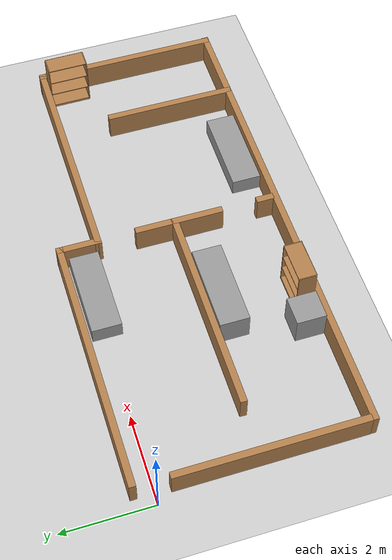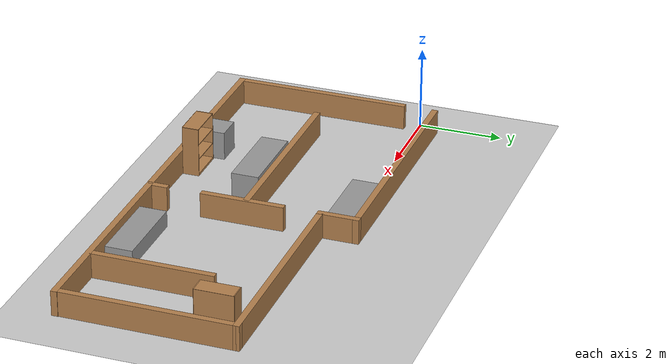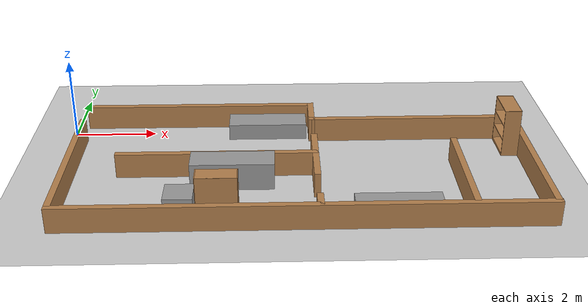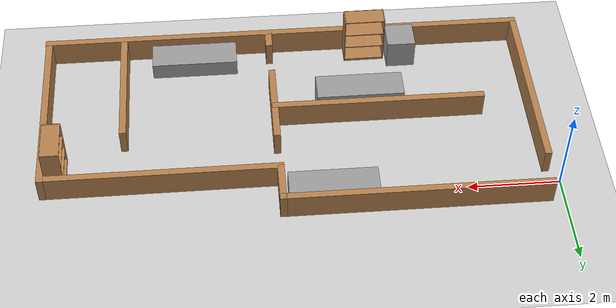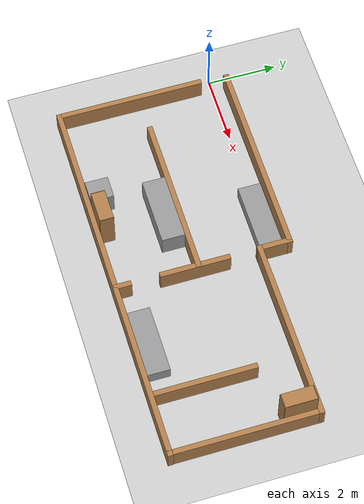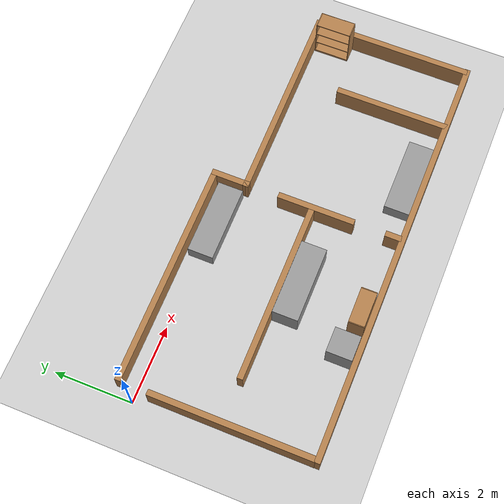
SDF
<sdf version="1.7">
 <world name="default">
  <light name="sun" type="directional">
   <pose>0 0 10 0 -0 0</pose>
   <diffuse>0.8 0.8 0.8 1</diffuse>
   <specular>0.2 0.2 0.2 1</specular>
   <attenuation>
    <range>1000</range>
    <constant>0.9</constant>
    <linear>0.01</linear>
    <quadratic>0.001</quadratic>
   </attenuation>
   <direction>-0.5 0.1 -0.9</direction>
   <spot><inner_angle>0</inner_angle><outer_angle>0</outer_angle><falloff>0</falloff></spot>
  </light>
  <model name="ground_plane">
   <static>1</static>
   <link name="link">
    <collision name="collision">
     <geometry><plane><normal>0 0 1</normal><size>100 100</size></plane></geometry>
     <surface>
      <contact><collide_bitmask>65535</collide_bitmask></contact>
      <friction><ode><mu>100</mu><mu2>50</mu2></ode></friction>
     </surface>
    </collision>
    <visual name="visual">
     <cast_shadows>0</cast_shadows>
     <geometry><plane><normal>0 0 1</normal><size>100 100</size></plane></geometry>
     <material>
      <script><uri>file://media/materials/scripts/gazebo.material</uri><name>Gazebo/Grey</name></script>
     </material>
    </visual>
   </link>
  </model>
  <gravity>0 0 -9.8</gravity>
  <magnetic_field>6e-06 2.3e-05 -4.2e-05</magnetic_field>
  <atmosphere type="adiabatic"/>
  <physics type="ode">
   <max_step_size>0.001</max_step_size>
   <real_time_factor>1</real_time_factor>
   <real_time_update_rate>1000</real_time_update_rate>
  </physics>
  <scene><ambient>0.4 0.4 0.4 1</ambient><background>0.7 0.7 0.7 1</background><shadows>1</shadows></scene>
  <spherical_coordinates>
   <surface_model>EARTH_WGS84</surface_model>
   <latitude_deg>0</latitude_deg>
   <longitude_deg>0</longitude_deg>
   <elevation>0</elevation>
   <heading_deg>0</heading_deg>
  </spherical_coordinates>
  <model name="LAR_test">
   <pose>5.594 -2.047 0 0 -0 0</pose>
   <link name="Wall_76">
    <collision name="Wall_76_Collision">
     <geometry><box><size>5.82713 0.15 0.6</size></box></geometry>
     <pose>0 0 0.3 0 -0 0</pose>
    </collision>
    <visual name="Wall_76_Visual">
     <pose>0 0 0.3 0 -0 0</pose>
     <geometry><box><size>5.82713 0.15 0.6</size></box></geometry>
     <material>
      <script><uri>file://media/materials/scripts/gazebo.material</uri><name>Gazebo/Wood</name></script>
      <ambient>1 1 1 1</ambient>
     </material>
     <meta><layer>0</layer></meta>
    </visual>
    <pose>-2.4315 2.473 0 0 -0 3.14159</pose>
   </link>
   <link name="Wall_78">
    <collision name="Wall_78_Collision">
     <geometry><box><size>1 0.15 0.6</size></box></geometry>
     <pose>0 0 0.3 0 -0 0</pose>
    </collision>
    <visual name="Wall_78_Visual">
     <pose>0 0 0.3 0 -0 0</pose>
     <geometry><box><size>1 0.15 0.6</size></box></geometry>
     <material>
      <script><uri>file://media/materials/scripts/gazebo.material</uri><name>Gazebo/Wood</name></script>
      <ambient>1 1 1 1</ambient>
     </material>
     <meta><layer>0</layer></meta>
    </visual>
    <pose>0.407 2.048 0 0 -0 -1.5708</pose>
   </link>
   <link name="Wall_80">
    <collision name="Wall_80_Collision">
     <geometry><box><size>5.25 0.15 0.6</size></box></geometry>
     <pose>0 0 0.3 0 -0 0</pose>
    </collision>
    <visual name="Wall_80_Visual">
     <pose>0 0 0.3 0 -0 0</pose>
     <geometry><box><size>5.25 0.15 0.6</size></box></geometry>
     <material>
      <script><uri>file://media/materials/scripts/gazebo.material</uri><name>Gazebo/Wood</name></script>
      <ambient>1 1 1 1</ambient>
     </material>
     <meta><layer>0</layer></meta>
    </visual>
    <pose>2.957 1.6285 0 0 -0 0.002157</pose>
   </link>
   <link name="Wall_82">
    <collision name="Wall_82_Collision">
     <geometry><box><size>4.24965 0.15 0.6</size></box></geometry>
     <pose>0 0 0.3 0 -0 0</pose>
    </collision>
    <visual name="Wall_82_Visual">
     <pose>0 0 0.3 0 -0 0</pose>
     <geometry><box><size>4.24965 0.15 0.6</size></box></geometry>
     <material>
      <script><uri>file://media/materials/scripts/gazebo.material</uri><name>Gazebo/Wood</name></script>
      <ambient>1 1 1 1</ambient>
     </material>
     <meta><layer>0</layer></meta>
    </visual>
    <pose>5.507 -0.4155 0 0 -0 -1.5708</pose>
   </link>
   <link name="Wall_84">
    <collision name="Wall_84_Collision">
     <geometry><box><size>4.15 0.15 0.6</size></box></geometry>
     <pose>0 0 0.3 0 -0 0</pose>
    </collision>
    <visual name="Wall_84_Visual">
     <pose>0 0 0.3 0 -0 0</pose>
     <geometry><box><size>4.15 0.15 0.6</size></box></geometry>
     <material>
      <script><uri>file://media/materials/scripts/gazebo.material</uri><name>Gazebo/Wood</name></script>
      <ambient>1 1 1 1</ambient>
     </material>
     <meta><layer>0</layer></meta>
    </visual>
    <pose>-5.335 -0.35 0 0 -0 -1.5708</pose>
   </link>
   <link name="Wall_86">
    <collision name="Wall_86_Collision">
     <geometry><box><size>11 0.15 0.6</size></box></geometry>
     <pose>0 0 0.3 0 -0 0</pose>
    </collision>
    <visual name="Wall_86_Visual">
     <pose>0 0 0.3 0 -0 0</pose>
     <geometry><box><size>11 0.15 0.6</size></box></geometry>
     <material>
      <script><uri>file://media/materials/scripts/gazebo.material</uri><name>Gazebo/Wood</name></script>
      <ambient>1 1 1 1</ambient>
     </material>
     <meta><layer>0</layer></meta>
    </visual>
    <pose>0.094 -2.473 0 0 -0 0</pose>
   </link>
   <link name="Wall_91">
    <collision name="Wall_91_Collision">
     <geometry><box><size>2 0.15 0.6</size></box></geometry>
     <pose>0 0 0.3 0 -0 0</pose>
    </collision>
    <visual name="Wall_91_Visual">
     <pose>0 0 0.3 0 -0 0</pose>
     <geometry><box><size>2 0.15 0.6</size></box></geometry>
     <material>
      <script><uri>file://media/materials/scripts/gazebo.material</uri><name>Gazebo/Wood</name></script>
      <ambient>1 1 1 1</ambient>
     </material>
     <meta><layer>0</layer></meta>
    </visual>
    <pose>0.426 -0.226 0 0 -0 -1.5708</pose>
   </link>
   <link name="Wall_93">
    <collision name="Wall_93_Collision">
     <geometry><box><size>0.5 0.15 0.6</size></box></geometry>
     <pose>0 0 0.3 0 -0 0</pose>
    </collision>
    <visual name="Wall_93_Visual">
     <pose>0 0 0.3 0 -0 0</pose>
     <geometry><box><size>0.5 0.15 0.6</size></box></geometry>
     <material>
      <script><uri>file://media/materials/scripts/gazebo.material</uri><name>Gazebo/Wood</name></script>
      <ambient>1 1 1 1</ambient>
     </material>
     <meta><layer>0</layer></meta>
    </visual>
    <pose>0.437 -2.276 0 0 -0 1.5708</pose>
   </link>
   <link name="Wall_96">
    <collision name="Wall_96_Collision">
     <geometry><box><size>4.75 0.15 0.6</size></box></geometry>
     <pose>0 0 0.3 0 -0 0</pose>
    </collision>
    <visual name="Wall_96_Visual">
     <pose>0 0 0.3 0 -0 0</pose>
     <geometry><box><size>4.75 0.15 0.6</size></box></geometry>
     <material>
      <script><uri>file://media/materials/scripts/gazebo.material</uri><name>Gazebo/Wood</name></script>
      <ambient>1 1 1 1</ambient>
     </material>
     <meta><layer>0</layer></meta>
    </visual>
    <pose>-1.886 -0.131 0 0 -0 3.14159</pose>
   </link>
   <link name="Wall_98">
    <collision name="Wall_98_Collision">
     <geometry><box><size>3 0.15 0.6</size></box></geometry>
     <pose>0 0 0.3 0 -0 0</pose>
    </collision>
    <visual name="Wall_98_Visual">
     <pose>0 0 0.3 0 -0 0</pose>
     <geometry><box><size>3 0.15 0.6</size></box></geometry>
     <material>
      <script><uri>file://media/materials/scripts/gazebo.material</uri><name>Gazebo/Wood</name></script>
      <ambient>1 1 1 1</ambient>
     </material>
     <meta><layer>0</layer></meta>
    </visual>
    <pose>3.78 -1.037 0 0 -0 1.5708</pose>
   </link>
   <static>1</static>
  </model>
  <model name="bookshelf">
   <static>1</static>
   <link name="link">
    <inertial><mass>1</mass></inertial>
    <collision name="back">
     <pose>0 0.005 0.6 0 -0 0</pose>
     <geometry><box><size>0.9 0.01 1.2</size></box></geometry>
    </collision>
    <visual name="visual1">
     <pose>0 0.005 0.6 0 -0 0</pose>
     <geometry><box><size>0.9 0.01 1.2</size></box></geometry>
     <material>
      <script><uri>file://media/materials/scripts/gazebo.material</uri><name>Gazebo/Wood</name></script>
     </material>
    </visual>
    <collision name="left_side">
     <pose>0.45 -0.195 0.6 0 -0 0</pose>
     <geometry><box><size>0.02 0.4 1.2</size></box></geometry>
    </collision>
    <visual name="visual2">
     <pose>0.45 -0.195 0.6 0 -0 0</pose>
     <geometry><box><size>0.02 0.4 1.2</size></box></geometry>
     <material>
      <script><uri>file://media/materials/scripts/gazebo.material</uri><name>Gazebo/Wood</name></script>
     </material>
    </visual>
    <collision name="right_side">
     <pose>-0.45 -0.195 0.6 0 -0 0</pose>
     <geometry><box><size>0.02 0.4 1.2</size></box></geometry>
    </collision>
    <visual name="visual3">
     <pose>-0.45 -0.195 0.6 0 -0 0</pose>
     <geometry><box><size>0.02 0.4 1.2</size></box></geometry>
     <material>
      <script><uri>file://media/materials/scripts/gazebo.material</uri><name>Gazebo/Wood</name></script>
     </material>
    </visual>
    <collision name="bottom">
     <pose>0 -0.195 0.03 0 -0 0</pose>
     <geometry><box><size>0.88 0.4 0.06</size></box></geometry>
    </collision>
    <visual name="visual4">
     <pose>0 -0.195 0.03 0 -0 0</pose>
     <geometry><box><size>0.88 0.4 0.06</size></box></geometry>
     <material>
      <script><uri>file://media/materials/scripts/gazebo.material</uri><name>Gazebo/Wood</name></script>
     </material>
    </visual>
    <collision name="top">
     <pose>0 -0.195 1.19 0 -0 0</pose>
     <geometry><box><size>0.88 0.4 0.02</size></box></geometry>
    </collision>
    <visual name="visual5">
     <pose>0 -0.195 1.19 0 -0 0</pose>
     <geometry><box><size>0.88 0.4 0.02</size></box></geometry>
     <material>
      <script><uri>file://media/materials/scripts/gazebo.material</uri><name>Gazebo/Wood</name></script>
     </material>
    </visual>
    <collision name="low_shelf">
     <pose>0 -0.195 0.43 0 -0 0</pose>
     <geometry><box><size>0.88 0.4 0.02</size></box></geometry>
    </collision>
    <visual name="visual6">
     <pose>0 -0.195 0.43 0 -0 0</pose>
     <geometry><box><size>0.88 0.4 0.02</size></box></geometry>
     <material>
      <script><uri>file://media/materials/scripts/gazebo.material</uri><name>Gazebo/Wood</name></script>
     </material>
    </visual>
    <collision name="high_shelf">
     <pose>0 -0.195 0.8 0 -0 0</pose>
     <geometry><box><size>0.88 0.4 0.02</size></box></geometry>
    </collision>
    <visual name="visual7">
     <pose>0 -0.195 0.8 0 -0 0</pose>
     <geometry><box><size>0.88 0.4 0.02</size></box></geometry>
     <material>
      <script><uri>file://media/materials/scripts/gazebo.material</uri><name>Gazebo/Wood</name></script>
     </material>
    </visual>
   </link>
   <pose>3.82158 -4.43703 0 0 0 -3.13518</pose>
  </model>
  <model name="bookshelf_0">
   <static>1</static>
   <link name="link">
    <inertial><mass>1</mass></inertial>
    <collision name="back">
     <pose>0 0.005 0.6 0 -0 0</pose>
     <geometry><box><size>0.9 0.01 1.2</size></box></geometry>
    </collision>
    <visual name="visual1">
     <pose>0 0.005 0.6 0 -0 0</pose>
     <geometry><box><size>0.9 0.01 1.2</size></box></geometry>
     <material>
      <script><uri>file://media/materials/scripts/gazebo.material</uri><name>Gazebo/Wood</name></script>
     </material>
    </visual>
    <collision name="left_side">
     <pose>0.45 -0.195 0.6 0 -0 0</pose>
     <geometry><box><size>0.02 0.4 1.2</size></box></geometry>
    </collision>
    <visual name="visual2">
     <pose>0.45 -0.195 0.6 0 -0 0</pose>
     <geometry><box><size>0.02 0.4 1.2</size></box></geometry>
     <material>
      <script><uri>file://media/materials/scripts/gazebo.material</uri><name>Gazebo/Wood</name></script>
     </material>
    </visual>
    <collision name="right_side">
     <pose>-0.45 -0.195 0.6 0 -0 0</pose>
     <geometry><box><size>0.02 0.4 1.2</size></box></geometry>
    </collision>
    <visual name="visual3">
     <pose>-0.45 -0.195 0.6 0 -0 0</pose>
     <geometry><box><size>0.02 0.4 1.2</size></box></geometry>
     <material>
      <script><uri>file://media/materials/scripts/gazebo.material</uri><name>Gazebo/Wood</name></script>
     </material>
    </visual>
    <collision name="bottom">
     <pose>0 -0.195 0.03 0 -0 0</pose>
     <geometry><box><size>0.88 0.4 0.06</size></box></geometry>
    </collision>
    <visual name="visual4">
     <pose>0 -0.195 0.03 0 -0 0</pose>
     <geometry><box><size>0.88 0.4 0.06</size></box></geometry>
     <material>
      <script><uri>file://media/materials/scripts/gazebo.material</uri><name>Gazebo/Wood</name></script>
     </material>
    </visual>
    <collision name="top">
     <pose>0 -0.195 1.19 0 -0 0</pose>
     <geometry><box><size>0.88 0.4 0.02</size></box></geometry>
    </collision>
    <visual name="visual5">
     <pose>0 -0.195 1.19 0 -0 0</pose>
     <geometry><box><size>0.88 0.4 0.02</size></box></geometry>
     <material>
      <script><uri>file://media/materials/scripts/gazebo.material</uri><name>Gazebo/Wood</name></script>
     </material>
    </visual>
    <collision name="low_shelf">
     <pose>0 -0.195 0.43 0 -0 0</pose>
     <geometry><box><size>0.88 0.4 0.02</size></box></geometry>
    </collision>
    <visual name="visual6">
     <pose>0 -0.195 0.43 0 -0 0</pose>
     <geometry><box><size>0.88 0.4 0.02</size></box></geometry>
     <material>
      <script><uri>file://media/materials/scripts/gazebo.material</uri><name>Gazebo/Wood</name></script>
     </material>
    </visual>
    <collision name="high_shelf">
     <pose>0 -0.195 0.8 0 -0 0</pose>
     <geometry><box><size>0.88 0.4 0.02</size></box></geometry>
    </collision>
    <visual name="visual7">
     <pose>0 -0.195 0.8 0 -0 0</pose>
     <geometry><box><size>0.88 0.4 0.02</size></box></geometry>
     <material>
      <script><uri>file://media/materials/scripts/gazebo.material</uri><name>Gazebo/Wood</name></script>
     </material>
    </visual>
   </link>
   <pose>11.0152 -0.959558 0 0 0 -1.56507</pose>
  </model>
  <model name="unit_box_1">
   <link name="link">
    <inertial>
     <mass>1</mass>
     <inertia>
      <ixx>0.166667</ixx>
      <ixy>0</ixy>
      <ixz>0</ixz>
      <iyy>0.166667</iyy>
      <iyz>0</iyz>
      <izz>0.166667</izz>
     </inertia>
    </inertial>
    <visual name="visual">
     <geometry><box><size>1.94128 0.654649 0.397354</size></box></geometry>
     <material>
      <script><name>Gazebo/Grey</name><uri>file://media/materials/scripts/gazebo.material</uri></script>
      <shader type="pixel"><normal_map>__default__</normal_map></shader>
      <ambient>0.729 0.741 0.714 1</ambient>
      <diffuse>0.7 0.7 0.7 1</diffuse>
      <specular>0.01 0.01 0.01 1</specular>
      <emissive>0 0 0 1</emissive>
     </material>
    </visual>
    <collision name="collision">
     <geometry><box><size>1.94128 0.654649 0.397354</size></box></geometry>
     <surface>
      <friction>
       <ode><mu>1</mu><mu2>1</mu2><fdir1>0 0 0</fdir1><slip1>0</slip1><slip2>0</slip2></ode>
       <torsional>
        <coefficient>1</coefficient>
        <patch_radius>0</patch_radius>
        <surface_radius>0</surface_radius>
        <use_patch_radius>1</use_patch_radius>
        <ode><slip>0</slip></ode>
       </torsional>
      </friction>
      <bounce><restitution_coefficient>0</restitution_coefficient><threshold>1e+06</threshold></bounce>
      <contact>
       <collide_without_contact>0</collide_without_contact>
       <collide_without_contact_bitmask>1</collide_without_contact_bitmask>
       <collide_bitmask>1</collide_bitmask>
       <ode>
        <soft_cfm>0</soft_cfm>
        <soft_erp>0.2</soft_erp>
        <kp>1e+13</kp>
        <kd>1</kd>
        <max_vel>0.01</max_vel>
        <min_depth>0</min_depth>
       </ode>
       <bullet>
        <split_impulse>1</split_impulse>
        <split_impulse_penetration_threshold>-0.01</split_impulse_penetration_threshold>
        <soft_cfm>0</soft_cfm>
        <soft_erp>0.2</soft_erp>
        <kp>1e+13</kp>
        <kd>1</kd>
       </bullet>
      </contact>
     </surface>
    </collision>
   </link>
   <static>0</static>
   <pose>7.76468 -4.1147 0.209671 0 -0 0</pose>
  </model>
  <model name="unit_box_1_clone">
   <link name="link">
    <inertial>
     <mass>1</mass>
     <inertia>
      <ixx>0.166667</ixx>
      <ixy>0</ixy>
      <ixz>0</ixz>
      <iyy>0.166667</iyy>
      <iyz>0</iyz>
      <izz>0.166667</izz>
     </inertia>
    </inertial>
    <visual name="visual">
     <geometry><box><size>1.94129 0.654649 0.397354</size></box></geometry>
     <material>
      <script><name>Gazebo/Grey</name><uri>file://media/materials/scripts/gazebo.material</uri></script>
      <shader type="pixel"><normal_map>__default__</normal_map></shader>
      <ambient>0.729 0.741 0.714 1</ambient>
      <diffuse>0.7 0.7 0.7 1</diffuse>
      <specular>0.01 0.01 0.01 1</specular>
      <emissive>0 0 0 1</emissive>
     </material>
    </visual>
    <collision name="collision">
     <geometry><box><size>1.94129 0.654649 0.397354</size></box></geometry>
     <surface>
      <friction>
       <ode><mu>1</mu><mu2>1</mu2><fdir1>0 0 0</fdir1><slip1>0</slip1><slip2>0</slip2></ode>
       <torsional>
        <coefficient>1</coefficient>
        <patch_radius>0</patch_radius>
        <surface_radius>0</surface_radius>
        <use_patch_radius>1</use_patch_radius>
        <ode><slip>0</slip></ode>
       </torsional>
      </friction>
      <bounce><restitution_coefficient>0</restitution_coefficient><threshold>1e+06</threshold></bounce>
      <contact>
       <collide_without_contact>0</collide_without_contact>
       <collide_without_contact_bitmask>1</collide_without_contact_bitmask>
       <collide_bitmask>1</collide_bitmask>
       <ode>
        <soft_cfm>0</soft_cfm>
        <soft_erp>0.2</soft_erp>
        <kp>1e+13</kp>
        <kd>1</kd>
        <max_vel>0.01</max_vel>
        <min_depth>0</min_depth>
       </ode>
       <bullet>
        <split_impulse>1</split_impulse>
        <split_impulse_penetration_threshold>-0.01</split_impulse_penetration_threshold>
        <soft_cfm>0</soft_cfm>
        <soft_erp>0.2</soft_erp>
        <kp>1e+13</kp>
        <kd>1</kd>
       </bullet>
      </contact>
     </surface>
    </collision>
   </link>
   <static>0</static>
   <pose>4.8933 -0.057545 0.209671 0 -0 0</pose>
  </model>
  <model name="unit_box_1_clone_0">
   <link name="link">
    <inertial>
     <mass>1</mass>
     <inertia>
      <ixx>0.166667</ixx>
      <ixy>0</ixy>
      <ixz>0</ixz>
      <iyy>0.166667</iyy>
      <iyz>0</iyz>
      <izz>0.166667</izz>
     </inertia>
    </inertial>
    <visual name="visual">
     <geometry><box><size>1.94129 0.654649 0.65354</size></box></geometry>
     <material>
      <script><name>Gazebo/Grey</name><uri>file://media/materials/scripts/gazebo.material</uri></script>
      <shader type="pixel"><normal_map>__default__</normal_map></shader>
      <ambient>0.729 0.741 0.714 1</ambient>
      <diffuse>0.7 0.7 0.7 1</diffuse>
      <specular>0.01 0.01 0.01 1</specular>
      <emissive>0 0 0 1</emissive>
     </material>
    </visual>
    <collision name="collision">
     <geometry><box><size>1.94129 0.654649 0.65354</size></box></geometry>
     <surface>
      <friction>
       <ode><mu>1</mu><mu2>1</mu2><fdir1>0 0 0</fdir1><slip1>0</slip1><slip2>0</slip2></ode>
       <torsional>
        <coefficient>1</coefficient>
        <patch_radius>0</patch_radius>
        <surface_radius>0</surface_radius>
        <use_patch_radius>1</use_patch_radius>
        <ode><slip>0</slip></ode>
       </torsional>
      </friction>
      <bounce><restitution_coefficient>0</restitution_coefficient><threshold>1e+06</threshold></bounce>
      <contact>
       <collide_without_contact>0</collide_without_contact>
       <collide_without_contact_bitmask>1</collide_without_contact_bitmask>
       <collide_bitmask>1</collide_bitmask>
       <ode>
        <soft_cfm>0</soft_cfm>
        <soft_erp>0.2</soft_erp>
        <kp>1e+13</kp>
        <kd>1</kd>
        <max_vel>0.01</max_vel>
        <min_depth>0</min_depth>
       </ode>
       <bullet>
        <split_impulse>1</split_impulse>
        <split_impulse_penetration_threshold>-0.01</split_impulse_penetration_threshold>
        <soft_cfm>0</soft_cfm>
        <soft_erp>0.2</soft_erp>
        <kp>1e+13</kp>
        <kd>1</kd>
       </bullet>
      </contact>
     </surface>
    </collision>
   </link>
   <static>0</static>
   <pose>4.08465 -2.59077 0.34302 0 -0 0</pose>
  </model>
  <model name="unit_box_1_clone_1">
   <link name="link">
    <inertial>
     <mass>1</mass>
     <inertia>
      <ixx>0.166667</ixx>
      <ixy>0</ixy>
      <ixz>0</ixz>
      <iyy>0.166667</iyy>
      <iyz>0</iyz>
      <izz>0.166667</izz>
     </inertia>
    </inertial>
    <visual name="visual">
     <geometry><box><size>0.642342 0.654649 0.68811</size></box></geometry>
     <material>
      <script><name>Gazebo/Grey</name><uri>file://media/materials/scripts/gazebo.material</uri></script>
      <shader type="pixel"><normal_map>__default__</normal_map></shader>
      <ambient>0.729 0.741 0.714 1</ambient>
      <diffuse>0.7 0.7 0.7 1</diffuse>
      <specular>0.01 0.01 0.01 1</specular>
      <emissive>0 0 0 1</emissive>
     </material>
    </visual>
    <collision name="collision">
     <geometry><box><size>0.642342 0.654649 0.68811</size></box></geometry>
     <surface>
      <friction>
       <ode><mu>1</mu><mu2>1</mu2><fdir1>0 0 0</fdir1><slip1>0</slip1><slip2>0</slip2></ode>
       <torsional>
        <coefficient>1</coefficient>
        <patch_radius>0</patch_radius>
        <surface_radius>0</surface_radius>
        <use_patch_radius>1</use_patch_radius>
        <ode><slip>0</slip></ode>
       </torsional>
      </friction>
      <bounce><restitution_coefficient>0</restitution_coefficient><threshold>1e+06</threshold></bounce>
      <contact>
       <collide_without_contact>0</collide_without_contact>
       <collide_without_contact_bitmask>1</collide_without_contact_bitmask>
       <collide_bitmask>1</collide_bitmask>
       <ode>
        <soft_cfm>0</soft_cfm>
        <soft_erp>0.2</soft_erp>
        <kp>1e+13</kp>
        <kd>1</kd>
        <max_vel>0.01</max_vel>
        <min_depth>0</min_depth>
       </ode>
       <bullet>
        <split_impulse>1</split_impulse>
        <split_impulse_penetration_threshold>-0.01</split_impulse_penetration_threshold>
        <soft_cfm>0</soft_cfm>
        <soft_erp>0.2</soft_erp>
        <kp>1e+13</kp>
        <kd>1</kd>
       </bullet>
      </contact>
     </surface>
    </collision>
   </link>
   <static>0</static>
   <pose>2.9886 -4.1125 0.351829 0 -0 0</pose>
  </model>
 </world>
</sdf>
